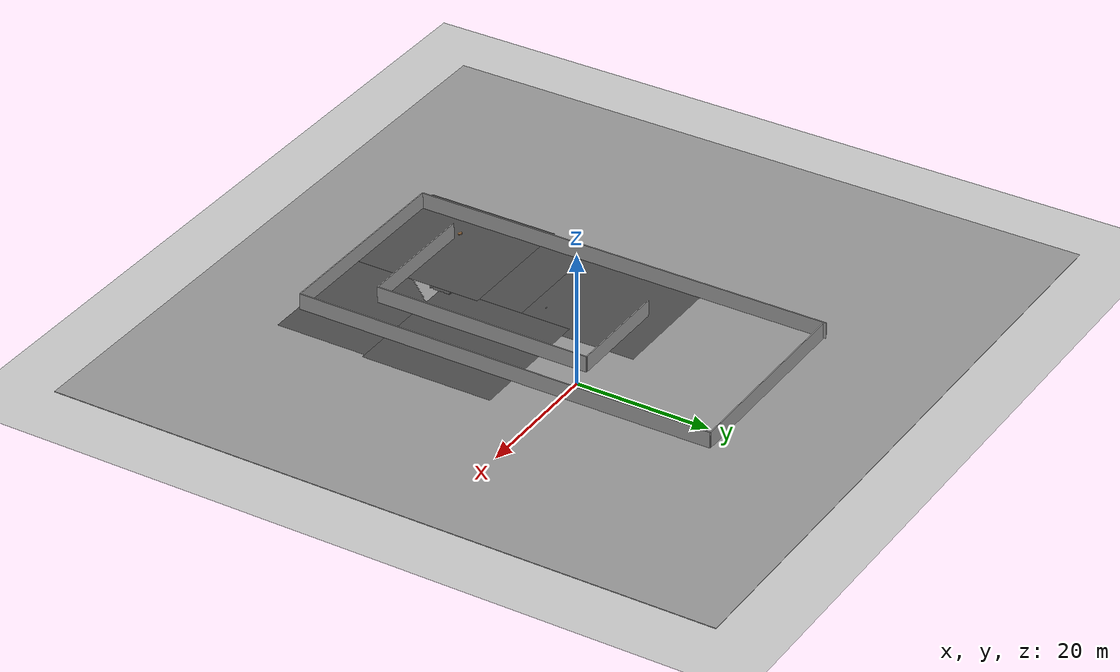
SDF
<sdf version="1.6">
 <world name="default">
  <model name="ground_plane">
   <static>1</static>
   <link name="link">
    <collision name="collision">
     <geometry><plane><normal>0 0 1</normal><size>100 100</size></plane></geometry>
     <surface><friction><ode><mu>100</mu><mu2>50</mu2></ode></friction></surface>
    </collision>
    <visual name="visual">
     <cast_shadows>0</cast_shadows>
     <geometry><plane><normal>0 0 1</normal><size>100 100</size></plane></geometry>
     <material>
      <script><uri>file://media/materials/scripts/gazebo.material</uri><name>Gazebo/Grey</name></script>
     </material>
    </visual>
   </link>
  </model>
  <model name="wooden_case">
   <link name="base">
    <pose>0 0 0.024 0 -0 0</pose>
    <inertial>
     <pose>-0.022184 0 0.171592 0 -0 0</pose>
     <mass>3.96264</mass>
     <inertia>
      <ixx>0.213536</ixx>
      <ixy>0</ixy>
      <ixz>0.000779377</ixz>
      <iyy>0.0708943</iyy>
      <iyz>0</iyz>
      <izz>0.154604</izz>
     </inertia>
    </inertial>
    <collision name="collision_back">
     <pose>-0.053975 0 0.1778 0 -0 0</pose>
     <geometry><box><size>0.01905 0.5461 0.3175</size></box></geometry>
     <surface>
      <contact>
       <poissons_ratio>0.347</poissons_ratio>
       <elastic_modulus>8.8e+09</elastic_modulus>
       <ode><kp>100000</kp><kd>100</kd><max_vel>100</max_vel><min_depth>0.001</min_depth></ode>
      </contact>
      <friction>
       <torsional>
        <coefficient>1</coefficient>
        <use_patch_radius>0</use_patch_radius>
        <surface_radius>0.01</surface_radius>
       </torsional>
      </friction>
     </surface>
    </collision>
    <visual name="visual_back">
     <pose>-0.053975 0 0.1778 0 -0 0</pose>
     <geometry><box><size>0.01905 0.5461 0.3175</size></box></geometry>
     <material>
      <script><uri>file://media/materials/scripts/gazebo.material</uri><name>Gazebo/Wood</name></script>
     </material>
    </visual>
    <collision name="collision_bottom">
     <pose>0 0 0.009525 0 -0 0</pose>
     <geometry><box><size>0.127 0.5842 0.01905</size></box></geometry>
     <surface>
      <contact>
       <poissons_ratio>0.347</poissons_ratio>
       <elastic_modulus>8.8e+09</elastic_modulus>
       <ode><kp>100000</kp><kd>100</kd><max_vel>100</max_vel><min_depth>0.001</min_depth></ode>
      </contact>
      <friction>
       <torsional>
        <coefficient>1</coefficient>
        <use_patch_radius>0</use_patch_radius>
        <surface_radius>0.01</surface_radius>
       </torsional>
      </friction>
     </surface>
    </collision>
    <visual name="visual_bottom">
     <pose>0 0 0.009525 0 -0 0</pose>
     <geometry><box><size>0.127 0.5842 0.01905</size></box></geometry>
     <material>
      <script><uri>file://media/materials/scripts/gazebo.material</uri><name>Gazebo/Wood</name></script>
     </material>
    </visual>
    <collision name="collision_top">
     <pose>0 0 0.346075 0 -0 0</pose>
     <geometry><box><size>0.127 0.5842 0.01905</size></box></geometry>
     <surface>
      <contact>
       <poissons_ratio>0.347</poissons_ratio>
       <elastic_modulus>8.8e+09</elastic_modulus>
       <ode><kp>100000</kp><kd>100</kd><max_vel>100</max_vel><min_depth>0.001</min_depth></ode>
      </contact>
      <friction>
       <torsional>
        <coefficient>1</coefficient>
        <use_patch_radius>0</use_patch_radius>
        <surface_radius>0.01</surface_radius>
       </torsional>
      </friction>
     </surface>
    </collision>
    <visual name="visual_top">
     <pose>0 0 0.346075 0 -0 0</pose>
     <geometry><box><size>0.127 0.5842 0.01905</size></box></geometry>
     <material>
      <script><uri>file://media/materials/scripts/gazebo.material</uri><name>Gazebo/Wood</name></script>
     </material>
    </visual>
    <collision name="collision_left">
     <pose>0 -0.282575 0.1778 0 -0 0</pose>
     <geometry><box><size>0.127 0.01905 0.3175</size></box></geometry>
     <surface>
      <contact>
       <poissons_ratio>0.347</poissons_ratio>
       <elastic_modulus>8.8e+09</elastic_modulus>
       <ode><kp>100000</kp><kd>100</kd><max_vel>100</max_vel><min_depth>0.001</min_depth></ode>
      </contact>
      <friction>
       <torsional>
        <coefficient>1</coefficient>
        <use_patch_radius>0</use_patch_radius>
        <surface_radius>0.01</surface_radius>
       </torsional>
      </friction>
     </surface>
    </collision>
    <visual name="visual_left">
     <pose>0 -0.282575 0.1778 0 -0 0</pose>
     <geometry><box><size>0.127 0.01905 0.3175</size></box></geometry>
     <material>
      <script><uri>file://media/materials/scripts/gazebo.material</uri><name>Gazebo/Wood</name></script>
     </material>
    </visual>
    <collision name="collision_right">
     <pose>0 0.282575 0.1778 0 -0 0</pose>
     <geometry><box><size>0.127 0.01905 0.3175</size></box></geometry>
     <surface>
      <contact>
       <poissons_ratio>0.347</poissons_ratio>
       <elastic_modulus>8.8e+09</elastic_modulus>
       <ode><kp>100000</kp><kd>100</kd><max_vel>100</max_vel><min_depth>0.001</min_depth></ode>
      </contact>
      <friction>
       <torsional>
        <coefficient>1</coefficient>
        <use_patch_radius>0</use_patch_radius>
        <surface_radius>0.01</surface_radius>
       </torsional>
      </friction>
     </surface>
    </collision>
    <visual name="visual_right">
     <pose>0 0.282575 0.1778 0 -0 0</pose>
     <geometry><box><size>0.127 0.01905 0.3175</size></box></geometry>
     <material>
      <script><uri>file://media/materials/scripts/gazebo.material</uri><name>Gazebo/Wood</name></script>
     </material>
    </visual>
    <collision name="collision_block_left">
     <pose>0.0095 -0.2151 -0.012 0 -0 0</pose>
     <geometry><box><size>0.108 0.05 0.024</size></box></geometry>
     <surface>
      <contact>
       <poissons_ratio>0.347</poissons_ratio>
       <elastic_modulus>8.8e+09</elastic_modulus>
       <ode><kp>100000</kp><kd>100</kd><max_vel>100</max_vel><min_depth>0.001</min_depth></ode>
      </contact>
      <friction>
       <torsional>
        <coefficient>1</coefficient>
        <use_patch_radius>0</use_patch_radius>
        <surface_radius>0.01</surface_radius>
       </torsional>
      </friction>
     </surface>
    </collision>
    <visual name="visual_block_left">
     <pose>0.0095 -0.2151 -0.012 0 -0 0</pose>
     <geometry><box><size>0.108 0.05 0.024</size></box></geometry>
     <material>
      <script><uri>file://media/materials/scripts/gazebo.material</uri><name>Gazebo/Wood</name></script>
     </material>
    </visual>
    <collision name="collision_block_right">
     <pose>0.0095 0.2151 -0.012 0 -0 0</pose>
     <geometry><box><size>0.108 0.05 0.024</size></box></geometry>
     <surface>
      <contact>
       <poissons_ratio>0.347</poissons_ratio>
       <elastic_modulus>8.8e+09</elastic_modulus>
       <ode><kp>100000</kp><kd>100</kd><max_vel>100</max_vel><min_depth>0.001</min_depth></ode>
      </contact>
      <friction>
       <torsional>
        <coefficient>1</coefficient>
        <use_patch_radius>0</use_patch_radius>
        <surface_radius>0.01</surface_radius>
       </torsional>
      </friction>
     </surface>
    </collision>
    <visual name="visual_block_right">
     <pose>0.0095 0.2151 -0.012 0 -0 0</pose>
     <geometry><box><size>0.108 0.05 0.024</size></box></geometry>
     <material>
      <script><uri>file://media/materials/scripts/gazebo.material</uri><name>Gazebo/Wood</name></script>
     </material>
    </visual>
   </link>
   <link name="lid">
    <pose>0.243775 0 0.009525 0 -0 0</pose>
    <inertial>
     <mass>1.97874</mass>
     <inertia>
      <ixx>0.0563367</ixx>
      <ixy>0</ixy>
      <ixz>0</ixz>
      <iyy>0.020911</iyy>
      <iyz>0</iyz>
      <izz>0.0771281</izz>
     </inertia>
    </inertial>
    <collision name="collision">
     <geometry><box><size>0.3556 0.5842 0.01905</size></box></geometry>
     <surface>
      <contact>
       <poissons_ratio>0.347</poissons_ratio>
       <elastic_modulus>8.8e+09</elastic_modulus>
       <ode><kp>100000</kp><kd>100</kd><max_vel>100</max_vel><min_depth>0.001</min_depth></ode>
      </contact>
      <friction>
       <torsional>
        <coefficient>1</coefficient>
        <use_patch_radius>0</use_patch_radius>
        <surface_radius>0.01</surface_radius>
       </torsional>
      </friction>
     </surface>
    </collision>
    <visual name="visual">
     <geometry><box><size>0.3556 0.5842 0.01905</size></box></geometry>
     <material>
      <script><uri>file://media/materials/scripts/gazebo.material</uri><name>Gazebo/Wood</name></script>
     </material>
    </visual>
    <visual name="tee_nut_1">
     <pose>0.122 -0.216 0 0 -0 0</pose>
     <geometry><cylinder><radius>0.00635</radius><length>0.0192405</length></cylinder></geometry>
     <material>
      <script><uri>file://media/materials/scripts/gazebo.material</uri><name>Gazebo/Grey</name></script>
     </material>
    </visual>
    <visual name="tee_nut_2">
     <pose>0.122 -0.088 0 0 -0 0</pose>
     <geometry><cylinder><radius>0.00635</radius><length>0.0192405</length></cylinder></geometry>
     <material>
      <script><uri>file://media/materials/scripts/gazebo.material</uri><name>Gazebo/Grey</name></script>
     </material>
    </visual>
    <visual name="tee_nut_3">
     <pose>0.122 0.088 0 0 -0 0</pose>
     <geometry><cylinder><radius>0.00635</radius><length>0.0192405</length></cylinder></geometry>
     <material>
      <script><uri>file://media/materials/scripts/gazebo.material</uri><name>Gazebo/Grey</name></script>
     </material>
    </visual>
    <visual name="tee_nut_4">
     <pose>0.122 0.216 0 0 -0 0</pose>
     <geometry><cylinder><radius>0.00635</radius><length>0.0192405</length></cylinder></geometry>
     <material>
      <script><uri>file://media/materials/scripts/gazebo.material</uri><name>Gazebo/Grey</name></script>
     </material>
    </visual>
   </link>
   <joint name="lid_hinge" type="revolute">
    <pose>-0.1778 0 0.01905 0 -0 0</pose>
    <parent>base</parent>
    <child>lid</child>
    <axis>
     <xyz>0 1 0</xyz>
     <limit><upper>0.523599</upper><lower>-1.5708</lower></limit>
     <use_parent_model_frame>0</use_parent_model_frame>
     <dynamics><spring_reference>0</spring_reference><spring_stiffness>0</spring_stiffness></dynamics>
    </axis>
   </joint>
   <pose>-23.3673 -32.8912 0.143475 0 1.57078 -2.00745</pose>
  </model>
  <model name="asphalt_plane">
   <static>1</static>
   <link name="link">
    <collision name="collision"><geometry><box><size>20 20 0.1</size></box></geometry></collision>
    <visual name="visual">
     <cast_shadows>0</cast_shadows>
     <geometry><box><size>20 20 0.1</size></box></geometry>
     <material>
      <script>
       <uri>model://asphalt_plane/materials/scripts</uri>
       <uri>model://asphalt_plane/materials/textures</uri>
       <name>vrc/asphalt</name>
      </script>
     </material>
    </visual>
   </link>
   <pose>-0.157604 -5.87884 0 0 -0 0</pose>
  </model>
  <model name="asphalt_plane_clone">
   <static>1</static>
   <link name="link">
    <collision name="collision"><geometry><box><size>20 20 0.1</size></box></geometry></collision>
    <visual name="visual">
     <cast_shadows>0</cast_shadows>
     <geometry><box><size>20 20 0.1</size></box></geometry>
     <material>
      <script>
       <uri>model://asphalt_plane/materials/scripts</uri>
       <uri>model://asphalt_plane/materials/textures</uri>
       <name>vrc/asphalt</name>
      </script>
     </material>
    </visual>
   </link>
   <pose>-18.8498 -6.6349 0 0 -0 0</pose>
  </model>
  <model name="asphalt_plane_clone_1">
   <static>1</static>
   <link name="link">
    <collision name="collision"><geometry><box><size>20 20 0.1</size></box></geometry></collision>
    <visual name="visual">
     <cast_shadows>0</cast_shadows>
     <geometry><box><size>20 20 0.1</size></box></geometry>
     <material>
      <script>
       <uri>model://asphalt_plane/materials/scripts</uri>
       <uri>model://asphalt_plane/materials/textures</uri>
       <name>vrc/asphalt</name>
      </script>
     </material>
    </visual>
   </link>
   <pose>-19.6615 -25.2051 0 0 -0 0</pose>
  </model>
  <model name="asphalt_plane_clone_6">
   <static>1</static>
   <link name="link">
    <collision name="collision"><geometry><box><size>20 20 0.1</size></box></geometry></collision>
    <visual name="visual">
     <cast_shadows>0</cast_shadows>
     <geometry><box><size>20 20 0.1</size></box></geometry>
     <material>
      <script>
       <uri>model://asphalt_plane/materials/scripts</uri>
       <uri>model://asphalt_plane/materials/textures</uri>
       <name>vrc/asphalt</name>
      </script>
     </material>
    </visual>
   </link>
   <pose>-1.35901 -31.5903 0 0 -0 0</pose>
  </model>
  <model name="asphalt_plane_clone_7">
   <static>1</static>
   <link name="link">
    <collision name="collision"><geometry><box><size>20 20 0.1</size></box></geometry></collision>
    <visual name="visual">
     <cast_shadows>0</cast_shadows>
     <geometry><box><size>20 20 0.1</size></box></geometry>
     <material>
      <script>
       <uri>model://asphalt_plane/materials/scripts</uri>
       <uri>model://asphalt_plane/materials/textures</uri>
       <name>vrc/asphalt</name>
      </script>
     </material>
    </visual>
   </link>
   <pose>-20.2717 -31.9114 0 0 -0 0</pose>
  </model>
  <model name="white_ball">
   <link name="link_0">
    <inertial>
     <mass>1</mass>
     <inertia><ixx>0.1</ixx><ixy>0</ixy><ixz>0</ixz><iyy>0.1</iyy><iyz>0</iyz><izz>0.1</izz></inertia>
    </inertial>
    <visual name="visual">
     <geometry><sphere><radius>0.1</radius></sphere></geometry>
     <material>
      <lighting>1</lighting>
      <script><uri>file://media/materials/scripts/gazebo.material</uri><name>Gazebo/Grey</name></script>
      <shader type="pixel"><normal_map>__default__</normal_map></shader>
      <ambient>1 1 1 1</ambient>
      <diffuse>1 1 1 1</diffuse>
      <specular>1 1 1 1</specular>
      <emissive>1 1 1 1</emissive>
     </material>
    </visual>
    <collision name="collision">
     <geometry><sphere><radius>0.1</radius></sphere></geometry>
     <surface>
      <friction>
       <ode><mu>1</mu><mu2>1</mu2><fdir1>0 0 0</fdir1><slip1>0</slip1><slip2>0</slip2></ode>
       <torsional>
        <coefficient>1</coefficient>
        <patch_radius>0</patch_radius>
        <surface_radius>0</surface_radius>
        <use_patch_radius>1</use_patch_radius>
        <ode><slip>0</slip></ode>
       </torsional>
      </friction>
      <bounce><restitution_coefficient>0</restitution_coefficient><threshold>1e+06</threshold></bounce>
      <contact>
       <collide_without_contact>0</collide_without_contact>
       <collide_without_contact_bitmask>1</collide_without_contact_bitmask>
       <collide_bitmask>1</collide_bitmask>
       <ode>
        <soft_cfm>0</soft_cfm>
        <soft_erp>0.2</soft_erp>
        <kp>1e+13</kp>
        <kd>1</kd>
        <max_vel>0.01</max_vel>
        <min_depth>0</min_depth>
       </ode>
       <bullet>
        <split_impulse>1</split_impulse>
        <split_impulse_penetration_threshold>-0.01</split_impulse_penetration_threshold>
        <soft_cfm>0</soft_cfm>
        <soft_erp>0.2</soft_erp>
        <kp>1e+13</kp>
        <kd>1</kd>
       </bullet>
      </contact>
     </surface>
    </collision>
   </link>
   <static>0</static>
   <pose>-13.5846 -13.0634 0.15 0 -0 0</pose>
  </model>
  <model name="walls">
   <pose>-11.415 -9.26862 0 0 -0 0</pose>
   <link name="Wall_18">
    <collision name="Wall_18_Collision">
     <geometry><box><size>64 0.15 2.5</size></box></geometry>
     <pose>0 0 1.25 0 -0 0</pose>
    </collision>
    <visual name="Wall_18_Visual">
     <pose>0 0 1.25 0 -0 0</pose>
     <geometry><box><size>64 0.15 2.5</size></box></geometry>
     <material>
      <script><uri>file://media/materials/scripts/gazebo.material</uri><name>Gazebo/Grey</name></script>
      <ambient>1 1 1 1</ambient>
     </material>
     <meta><layer>0</layer></meta>
    </visual>
    <pose>-15.175 0 0 0 0 -1.5708</pose>
   </link>
   <link name="Wall_19">
    <collision name="Wall_19_Collision">
     <geometry><box><size>30.5 0.15 2.5</size></box></geometry>
     <pose>0 0 1.25 0 -0 0</pose>
    </collision>
    <visual name="Wall_19_Visual">
     <pose>0 0 1.25 0 -0 0</pose>
     <geometry><box><size>30.5 0.15 2.5</size></box></geometry>
     <material>
      <script><uri>file://media/materials/scripts/gazebo.material</uri><name>Gazebo/Grey</name></script>
      <ambient>1 1 1 1</ambient>
     </material>
     <meta><layer>0</layer></meta>
    </visual>
    <pose>-4e-06 -31.925 0 0 -0 0</pose>
   </link>
   <link name="Wall_20">
    <collision name="Wall_20_Collision">
     <geometry><box><size>63.75 0.15 2.5</size></box></geometry>
     <pose>0 0 1.25 0 -0 0</pose>
    </collision>
    <visual name="Wall_20_Visual">
     <pose>0 0 1.25 0 -0 0</pose>
     <geometry><box><size>63.75 0.15 2.5</size></box></geometry>
     <material>
      <script><uri>file://media/materials/scripts/gazebo.material</uri><name>Gazebo/Grey</name></script>
      <ambient>1 1 1 1</ambient>
     </material>
     <meta><layer>0</layer></meta>
    </visual>
    <pose>15.175 -0.125 0 0 -0 1.5708</pose>
   </link>
   <link name="Wall_21">
    <collision name="Wall_21_Collision">
     <geometry><box><size>30 0.15 2.5</size></box></geometry>
     <pose>0 0 1.25 0 -0 0</pose>
    </collision>
    <visual name="Wall_21_Visual">
     <pose>0 0 1.25 0 -0 0</pose>
     <geometry><box><size>30 0.15 2.5</size></box></geometry>
     <material>
      <script><uri>file://media/materials/scripts/gazebo.material</uri><name>Gazebo/Grey</name></script>
      <ambient>1 1 1 1</ambient>
     </material>
     <meta><layer>0</layer></meta>
    </visual>
    <pose>0.249996 31.675 0 0 -0 3.14159</pose>
   </link>
   <link name="Wall_23">
    <collision name="Wall_23_Collision">
     <geometry><box><size>19 0.15 2.5</size></box></geometry>
     <pose>0 0 1.25 0 -0 0</pose>
    </collision>
    <visual name="Wall_23_Visual">
     <pose>0 0 1.25 0 -0 0</pose>
     <geometry><box><size>19 0.15 2.5</size></box></geometry>
     <material>
      <script><uri>file://media/materials/scripts/gazebo.material</uri><name>Gazebo/Grey</name></script>
      <ambient>1 1 1 1</ambient>
     </material>
     <meta><layer>0</layer></meta>
    </visual>
    <pose>-1.09979 -23.9344 0 0 -0 0</pose>
   </link>
   <link name="Wall_24">
    <collision name="Wall_24_Collision">
     <geometry><box><size>33 0.15 2.5</size></box></geometry>
     <pose>0 0 1.25 0 -0 0</pose>
    </collision>
    <visual name="Wall_24_Visual">
     <pose>0 0 1.25 0 -0 0</pose>
     <geometry><box><size>33 0.15 2.5</size></box></geometry>
     <material>
      <script><uri>file://media/materials/scripts/gazebo.material</uri><name>Gazebo/Grey</name></script>
      <ambient>1 1 1 1</ambient>
     </material>
     <meta><layer>0</layer></meta>
    </visual>
    <pose>8.32521 -7.50943 0 0 -0 1.5708</pose>
   </link>
   <link name="Wall_25">
    <collision name="Wall_25_Collision">
     <geometry><box><size>16 0.15 2.5</size></box></geometry>
     <pose>0 0 1.25 0 -0 0</pose>
    </collision>
    <visual name="Wall_25_Visual">
     <pose>0 0 1.25 0 -0 0</pose>
     <geometry><box><size>16 0.15 2.5</size></box></geometry>
     <material>
      <script><uri>file://media/materials/scripts/gazebo.material</uri><name>Gazebo/Grey</name></script>
      <ambient>1 1 1 1</ambient>
     </material>
     <meta><layer>0</layer></meta>
    </visual>
    <pose>0.400211 8.91557 0 0 -0 3.14159</pose>
   </link>
   <static>1</static>
  </model>
  <model name="ground_plane_0">
   <static>1</static>
   <link name="link">
    <collision name="collision">
     <geometry><plane><normal>0 0 1</normal><size>100 100</size></plane></geometry>
     <surface>
      <contact><collide_bitmask>65535</collide_bitmask></contact>
      <friction><ode><mu>100</mu><mu2>50</mu2></ode></friction>
     </surface>
    </collision>
    <visual name="visual">
     <cast_shadows>0</cast_shadows>
     <geometry><plane><normal>0 0 1</normal><size>100 100</size></plane></geometry>
     <material>
      <script><uri>file://media/materials/scripts/gazebo.material</uri><name>Gazebo/Grey</name></script>
     </material>
    </visual>
   </link>
   <pose>-12.9878 -7.6054 0 0 -0 0</pose>
  </model>
  <model name="asphalt_plane_0">
   <static>1</static>
   <link name="link">
    <collision name="collision"><geometry><box><size>20 20 0.1</size></box></geometry></collision>
    <visual name="visual">
     <cast_shadows>0</cast_shadows>
     <geometry><box><size>20 20 0.1</size></box></geometry>
     <material>
      <script>
       <uri>model://asphalt_plane/materials/scripts</uri>
       <uri>model://asphalt_plane/materials/textures</uri>
       <name>vrc/asphalt</name>
      </script>
     </material>
    </visual>
   </link>
   <pose>-0.796457 -17.6562 0 0 -0 0</pose>
  </model>
 </world>
</sdf>
